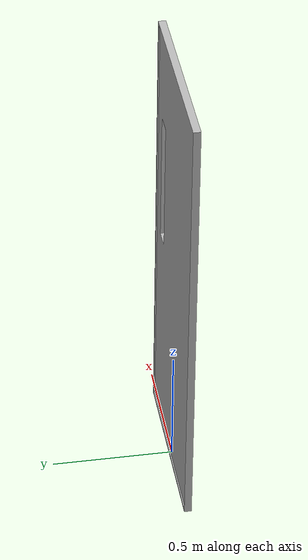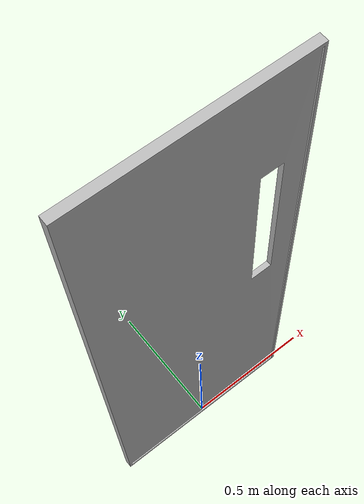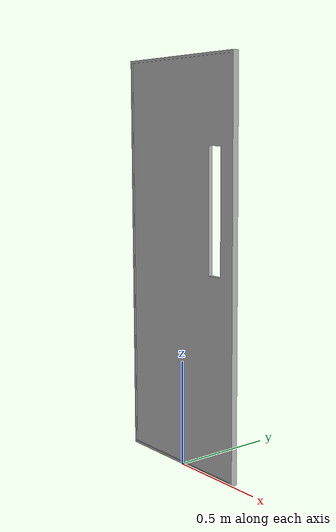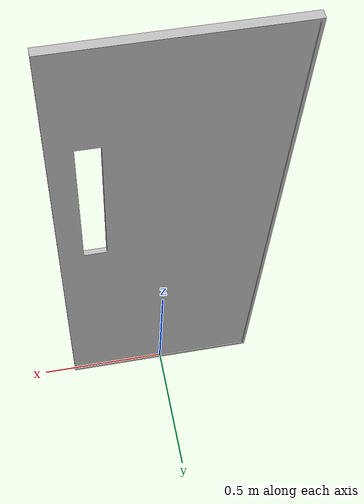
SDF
<?xml version="1.0"?>

<sdf version="1.6">
  <model name='OrangeDoors'>
	<static>true</static>
		<link name="body">
		<pose>0 0 0 0 0 0</pose>

			<visual name="visual">
			<geometry>
				<mesh><uri>model://OrangeDoors/meshes/door.obj</uri></mesh>
			</geometry>
			</visual>

			<collision name="collision">
			<geometry>
				<mesh><uri>model://OrangeDoors/meshes/door.dae</uri></mesh>
			</geometry>
			</collision>

		</link>
  </model>
</sdf>
